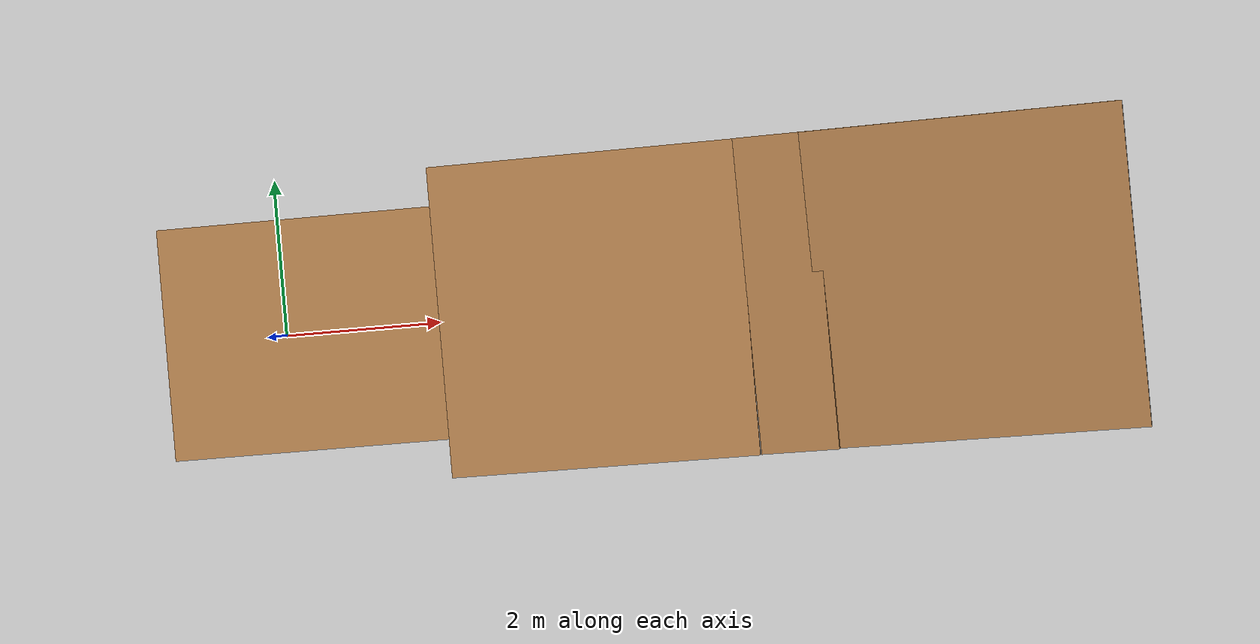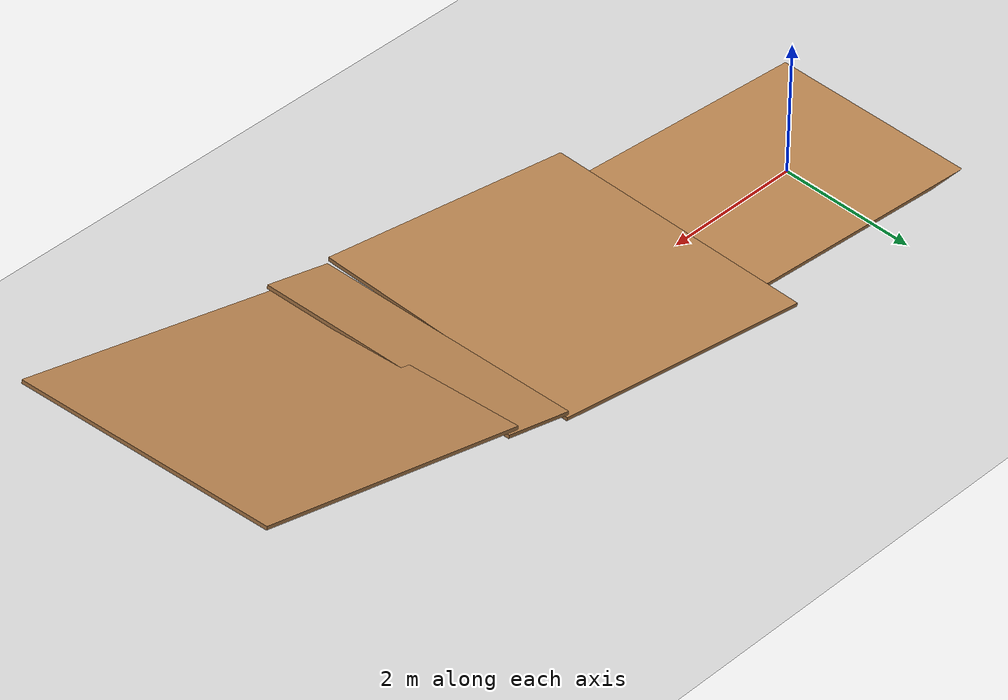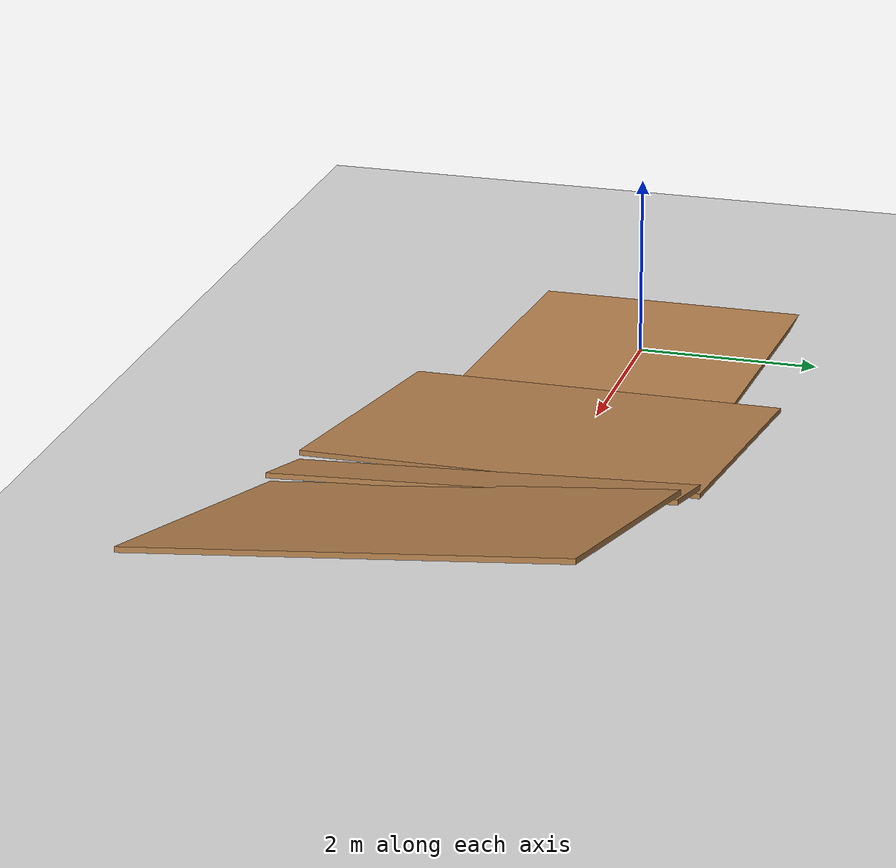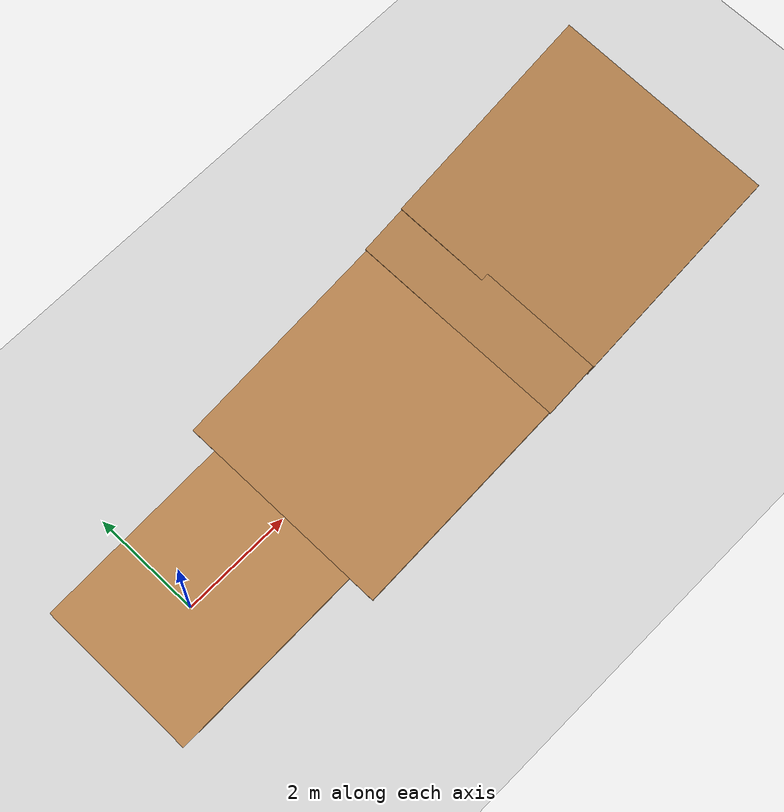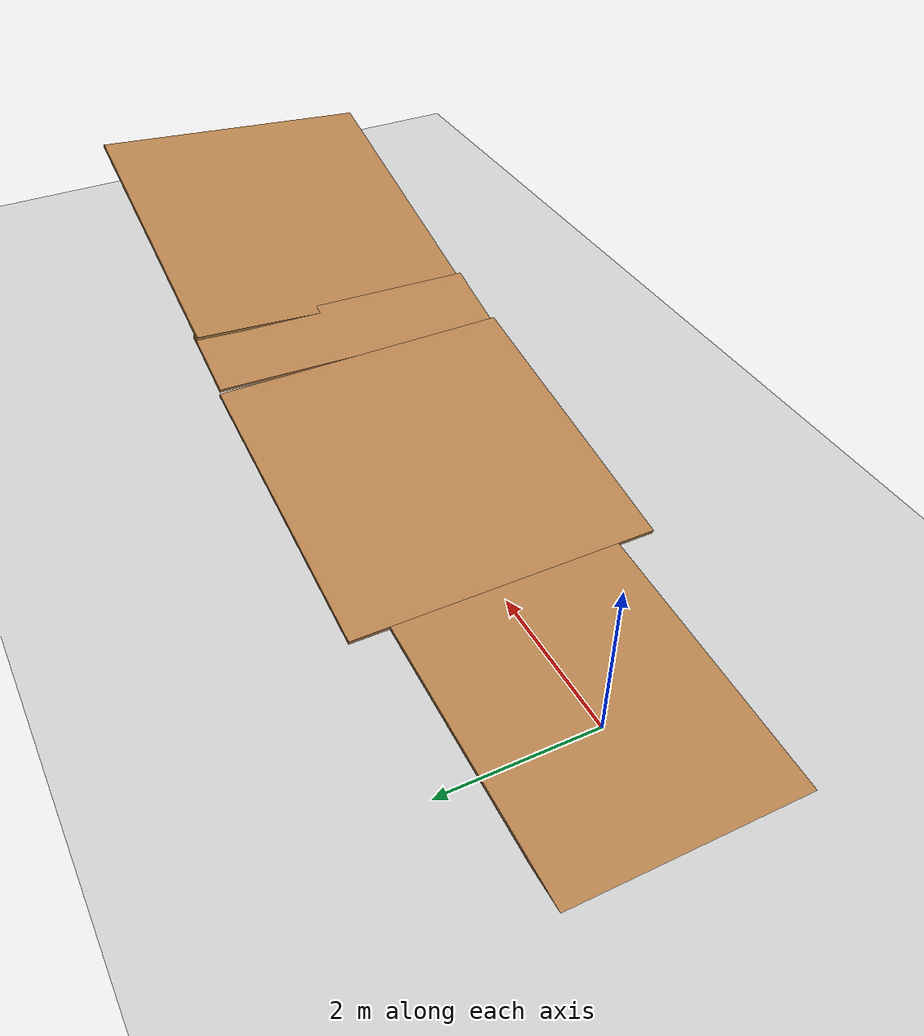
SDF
<?xml version="1.0" ?>
<sdf version='1.6'>
  <world name='default'>
    <plugin name='xbot2_clock' filename='libxbot2_gz_clock.so'/>
    <gravity>0 0 -9.81</gravity>
    <model name='ground_plane'>
      <static>1</static>
      <link name='link'>
        <collision name='collision'>
          <geometry>
            <plane>
              <normal>0 0 1</normal>
              <size>100 100</size>
            </plane>
          </geometry>
          <surface>
            <friction>
              <ode>
                <mu>1</mu>
                <mu2>1</mu2>
              </ode>
              <torsional>
                <ode/>
              </torsional>
            </friction>
            <contact>
              <ode/>
            </contact>
            <bounce/>
          </surface>
          <max_contacts>10</max_contacts>
        </collision>
        <visual name='visual'>
          <cast_shadows>0</cast_shadows>
          <geometry>
            <plane>
              <normal>0 0 1</normal>
              <size>100 100</size>
            </plane>
          </geometry>
          <material>
            <script>
              <uri>file://media/materials/scripts/gazebo.material</uri>
              <name>Gazebo/Grey</name>
            </script>
          </material>
        </visual>
        <self_collide>0</self_collide>
        <enable_wind>0</enable_wind>
        <kinematic>0</kinematic>
      </link>
    </model>
    <model name='inclined_plane_5deg'>
      <static>1</static>
      <pose frame=''>0 0 0.1 0 -0.08726 0</pose>
      <link name='link1'>
        <collision name='collision1'>
          <geometry>
            <box>
              <size>4 3 0.05</size>
            </box>
          </geometry>
          <max_contacts>10</max_contacts>
          <surface>
            <contact>
              <ode/>
            </contact>
            <bounce/>
            <friction>
              <torsional>
                <ode/>
              </torsional>
              <ode/>
            </friction>
          </surface>
        </collision>
        <visual name='visual1'>
          <cast_shadows>0</cast_shadows>
          <geometry>
            <box>
              <size>4 3 0.05</size>
            </box>
          </geometry>
          <material>
            <script>
              <uri>file://media/materials/scripts/gazebo.material</uri>
              <name>Gazebo/WoodFloor</name>
            </script>
          </material>
        </visual>
        <self_collide>0</self_collide>
        <enable_wind>0</enable_wind>
        <kinematic>0</kinematic>
      </link>
    </model>
    <model name='inclined_plane_10deg'>
      <static>1</static>
      <pose frame=''>3.962 0 0.6216 0 -0.17453 0</pose>
      <link name='link2'>
        <collision name='collision2'>
        <origin>3.962 0 0.6216 0 -0.17453 0</origin>
          <geometry>
            <box>
              <size>4 4 0.05</size>
            </box>
          </geometry>
          <max_contacts>10</max_contacts>
          <surface>
            <contact>
              <ode/>
            </contact>
            <bounce/>
            <friction>
              <torsional>
                <ode/>
              </torsional>
              <ode/>
            </friction>
          </surface>
        </collision>
        <visual name='visual2'>
          <cast_shadows>0</cast_shadows>
          <geometry>
            <box>
              <size>4 4 0.05</size>
            </box>
          </geometry>
          <material>
            <script>
              <uri>file://media/materials/scripts/gazebo.material</uri>
              <name>Gazebo/WoodFloor</name>
            </script>
          </material>
        </visual>
        <self_collide>0</self_collide>
        <enable_wind>0</enable_wind>
        <kinematic>0</kinematic>
      </link>
    </model>
    <model name='inclined_plane_tr'>
      <static>1</static>
      <pose frame=''>6.4145 0 1.0983 0.0435 -0.262 0</pose>
      <link name='linktr'>
        <collision name='collisiontr'>
          <geometry>
            <box>
              <size>1 4 0.05</size>
            </box>
          </geometry>
          <max_contacts>10</max_contacts>
          <surface>
            <contact>
              <ode/>
            </contact>
            <bounce/>
            <friction>
              <torsional>
                <ode/>
              </torsional>
              <ode/>
            </friction>
          </surface>
        </collision>
        <visual name='visualtr'>
          <cast_shadows>0</cast_shadows>
          <geometry>
            <box>
              <size>1 4 0.05</size>
            </box>
          </geometry>
          <material>
            <script>
              <uri>file://media/materials/scripts/gazebo.material</uri>
              <name>Gazebo/WoodFloor</name>
            </script>
          </material>
        </visual>
        <self_collide>0</self_collide>
        <enable_wind>0</enable_wind>
        <kinematic>0</kinematic>
      </link>
    </model>
    <model name='inclined_plane_15_5deg'>
      <static>1</static>
      <pose frame=''>8.7 0 1.7 0.08726 -0.262 -0</pose>
      <link name='link3'>
        <collision name='collision3'>
          <geometry>
            <box>
              <size>4 4 0.05</size>
            </box>
          </geometry>
          <max_contacts>10</max_contacts>
          <surface>
            <contact>
              <ode/>
            </contact>
            <bounce/>
            <friction>
              <torsional>
                <ode/>
              </torsional>
              <ode/>
            </friction>
          </surface>
        </collision>
        <visual name='visual3'>
          <cast_shadows>0</cast_shadows>
          <geometry>
            <box>
              <size>4 4 0.05</size>
            </box>
          </geometry>
          <material>
            <script>
              <uri>file://media/materials/scripts/gazebo.material</uri>
              <name>Gazebo/WoodFloor</name>
            </script>
          </material>
        </visual>
        <self_collide>0</self_collide>
        <enable_wind>0</enable_wind>
        <kinematic>0</kinematic>
      </link>
    </model>
    <light name='sun' type='directional'>
      <cast_shadows>1</cast_shadows>
      <pose frame=''>0 0 10 0 -0 0</pose>
      <diffuse>0.8 0.8 0.8 1</diffuse>
      <specular>0.2 0.2 0.2 1</specular>
      <attenuation>
        <range>1000</range>
        <constant>0.9</constant>
        <linear>0.01</linear>
        <quadratic>0.001</quadratic>
      </attenuation>
      <direction>-0.5 0.1 -0.9</direction>
    </light>
    <gui fullscreen='0'>
      <camera name='user_camera'>
        <pose frame=''>4.75529 -6.84423 2.36823 0 0.159643 1.92019</pose>
        <view_controller>orbit</view_controller>
        <projection_type>perspective</projection_type>
      </camera>
    </gui>
    <physics name='update_rate' default='0' type='ode'>
      <real_time_update_rate>4000</real_time_update_rate>
      <max_step_size>0.00025</max_step_size>
      <max_contacts>5</max_contacts>
      <bullet>
        <solver>
          <iters>100</iters>
          <sor>1.55</sor>
          <type>sequential_impulse</type>
        </solver>
        <constraints>
          <contact_surface_layer>0.2</contact_surface_layer>
          <cfm>0.005</cfm>
          <erp>0.2</erp>
          <split_impulse>1</split_impulse>
          <split_impulse_penetration_threshold>-0.01</split_impulse_penetration_threshold>
        </constraints>
      </bullet>
      <ode>
        <solver>
          <iters>50</iters>
          <sor>1.2</sor>
          <type>quick</type>
          <use_dynamic_moi_rescaling>0</use_dynamic_moi_rescaling>
        </solver>
        <constraints>
          <contact_surface_layer>0.0002</contact_surface_layer>
          <contact_max_correcting_vel>500</contact_max_correcting_vel>
          <cfm>1e-06</cfm>
          <erp>0.3</erp>
        </constraints>
      </ode>
      <real_time_factor>1</real_time_factor>
    </physics>
    <magnetic_field>6e-06 2.3e-05 -4.2e-05</magnetic_field>
    <atmosphere type='adiabatic'/>
    <scene>
      <ambient>0.4 0.4 0.4 1</ambient>
      <background>0.7 0.7 0.7 1</background>
      <shadows>1</shadows>
    </scene>
    <audio>
      <device>default</device>
    </audio>
    <wind/>
    <spherical_coordinates>
      <surface_model>EARTH_WGS84</surface_model>
      <latitude_deg>0</latitude_deg>
      <longitude_deg>0</longitude_deg>
      <elevation>0</elevation>
      <heading_deg>0</heading_deg>
    </spherical_coordinates>
  </world>
</sdf>
